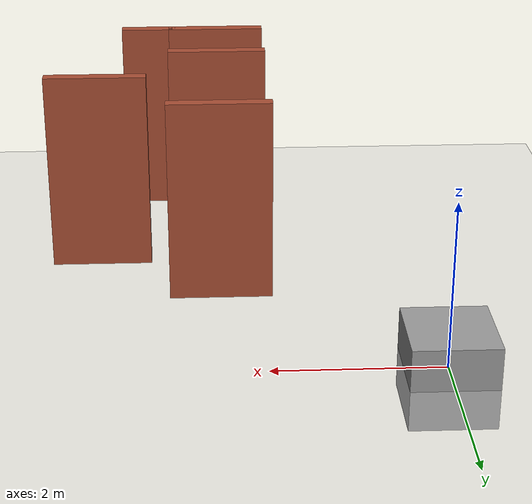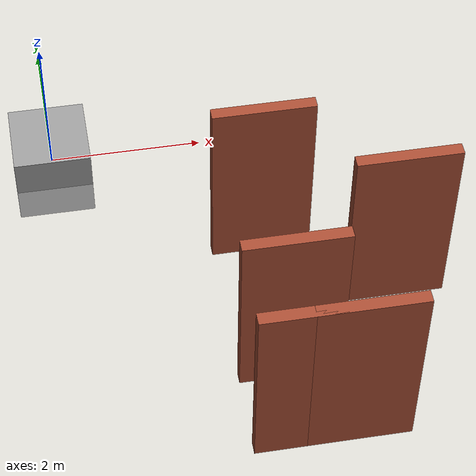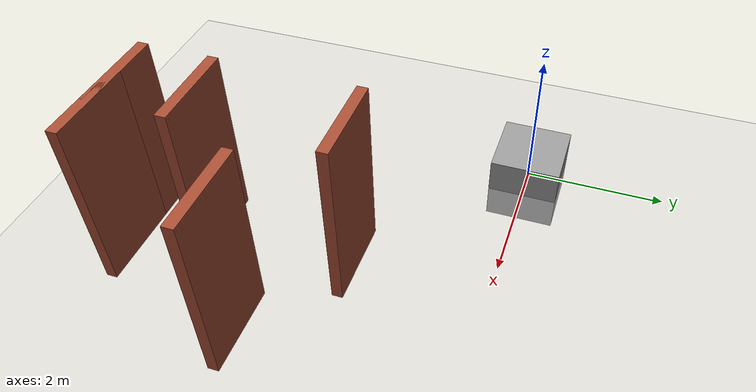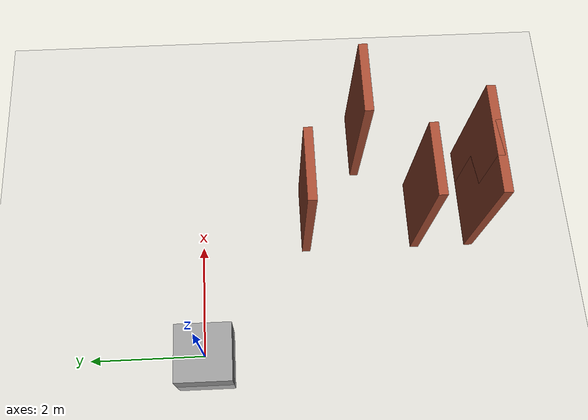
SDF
<sdf version="1.6">
 <world name="default">
  <light name="sun" type="directional">
   <pose>0 0 10 0 -0 0</pose>
   <diffuse>0.8 0.8 0.8 1</diffuse>
   <specular>0.2 0.2 0.2 1</specular>
   <attenuation>
    <range>1000</range>
    <constant>0.9</constant>
    <linear>0.01</linear>
    <quadratic>0.001</quadratic>
   </attenuation>
   <direction>-0.5 0.1 -0.9</direction>
  </light>
  <model name="ground_plane">
   <static>1</static>
   <link name="link">
    <collision name="collision">
     <geometry><plane><normal>0 0 1</normal><size>100 100</size></plane></geometry>
     <surface><friction><ode><mu>100</mu><mu2>50</mu2></ode></friction></surface>
    </collision>
    <visual name="visual">
     <cast_shadows>0</cast_shadows>
     <geometry><plane><normal>0 0 1</normal><size>100 100</size></plane></geometry>
     <material>
      <script><uri>file://media/materials/scripts/gazebo.material</uri><name>Gazebo/Grey</name></script>
     </material>
    </visual>
   </link>
  </model>
  <gravity>0 0 -9.8</gravity>
  <magnetic_field>6e-06 2.3e-05 -4.2e-05</magnetic_field>
  <atmosphere type="adiabatic"/>
  <physics name="default_physics" default="0" type="ode">
   <max_step_size>0.001</max_step_size>
   <real_time_factor>1</real_time_factor>
   <real_time_update_rate>1000</real_time_update_rate>
  </physics>
  <scene><ambient>0.4 0.4 0.4 1</ambient><background>0.7 0.7 0.7 1</background><shadows>1</shadows></scene>
  <audio><device>default</device></audio>
  <spherical_coordinates>
   <surface_model>EARTH_WGS84</surface_model>
   <latitude_deg>0</latitude_deg>
   <longitude_deg>0</longitude_deg>
   <elevation>0</elevation>
   <heading_deg>0</heading_deg>
  </spherical_coordinates>
  <model name="Untitled">
   <pose>3 0.5 0 0 -0 0</pose>
   <link name="Wall_4">
    <collision name="Wall_4_Collision">
     <geometry><box><size>1.25 0.15 2.5</size></box></geometry>
     <pose>-1.5 2 1.25 0 -0 0</pose>
    </collision>
    <visual name="Wall_4_Visual">
     <pose>-1.5 2 1.25 0 -0 0</pose>
     <geometry><box><size>1.25 0.15 2.5</size></box></geometry>
     <material>
      <script><uri>file://media/materials/scripts/gazebo.material</uri><name>Gazebo/Bricks</name></script>
      <ambient>1 1 1 1</ambient>
     </material>
     <meta><layer>0</layer></meta>
    </visual>
    <pose>-0.507011 -1.38253 0 0 -0 3.14159</pose>
   </link>
   <link name="Wall_5">
    <collision name="Wall_5_Collision">
     <geometry><box><size>1.25 0.15 2.5</size></box></geometry>
     <pose>-0.625 4 1.25 0 -0 0</pose>
    </collision>
    <visual name="Wall_5_Visual">
     <pose>-0.625 4 1.25 0 -0 0</pose>
     <geometry><box><size>1.25 0.15 2.5</size></box></geometry>
     <material>
      <script><uri>file://media/materials/scripts/gazebo.material</uri><name>Gazebo/Bricks</name></script>
      <ambient>1 1 1 1</ambient>
     </material>
     <meta><layer>0</layer></meta>
    </visual>
    <pose>-0.507011 -1.38253 0 0 -0 3.14159</pose>
   </link>
   <link name="Wall_6">
    <collision name="Wall_6_Collision">
     <geometry><box><size>1.25 0.15 2.5</size></box></geometry>
     <pose>0 4 1.25 0 -0 0</pose>
    </collision>
    <visual name="Wall_6_Visual">
     <pose>0 4 1.25 0 -0 0</pose>
     <geometry><box><size>1.25 0.15 2.5</size></box></geometry>
     <material>
      <script><uri>file://media/materials/scripts/gazebo.material</uri><name>Gazebo/Bricks</name></script>
      <ambient>1 1 1 1</ambient>
     </material>
     <meta><layer>0</layer></meta>
    </visual>
    <pose>-0.507011 -1.38253 0 0 -0 3.14159</pose>
   </link>
   <link name="Wall_7">
    <collision name="Wall_7_Collision">
     <geometry><box><size>1.25 0.15 2.5</size></box></geometry>
     <pose>0 3 1.25 0 -0 0</pose>
    </collision>
    <visual name="Wall_7_Visual">
     <pose>0 3 1.25 0 -0 0</pose>
     <geometry><box><size>1.25 0.15 2.5</size></box></geometry>
     <material>
      <script><uri>file://media/materials/scripts/gazebo.material</uri><name>Gazebo/Bricks</name></script>
      <ambient>1 1 1 1</ambient>
     </material>
     <meta><layer>0</layer></meta>
    </visual>
    <pose>-0.507011 -1.38253 0 0 -0 3.14159</pose>
   </link>
   <link name="Wall_8">
    <collision name="Wall_8_Collision">
     <geometry><box><size>1.25 0.15 2.5</size></box></geometry>
     <pose>0 1 1.25 0 -0 0</pose>
    </collision>
    <visual name="Wall_8_Visual">
     <pose>0 1 1.25 0 -0 0</pose>
     <geometry><box><size>1.25 0.15 2.5</size></box></geometry>
     <material>
      <script><uri>file://media/materials/scripts/gazebo.material</uri><name>Gazebo/Bricks</name></script>
      <ambient>1 1 1 1</ambient>
     </material>
     <meta><layer>0</layer></meta>
    </visual>
    <pose>-0.507011 -1.38253 0 0 -0 3.14159</pose>
   </link>
   <static>1</static>
  </model>
  <model name="unit_box">
   <link name="link">
    <inertial>
     <mass>1</mass>
     <inertia>
      <ixx>0.166667</ixx>
      <ixy>0</ixy>
      <ixz>0</ixz>
      <iyy>0.166667</iyy>
      <iyz>0</iyz>
      <izz>0.166667</izz>
     </inertia>
    </inertial>
    <collision name="collision"><geometry><box><size>1 1 1</size></box></geometry></collision>
    <visual name="visual">
     <geometry><box><size>1 1 1</size></box></geometry>
     <material>
      <script><name>Gazebo/Grey</name><uri>file://media/materials/scripts/gazebo.material</uri></script>
     </material>
    </visual>
   </link>
  </model>
  <model name="unit_box2">
   <link name="link">
    <inertial>
     <mass>1</mass>
     <inertia>
      <ixx>0.166667</ixx>
      <ixy>0</ixy>
      <ixz>0</ixz>
      <iyy>0.166667</iyy>
      <iyz>0</iyz>
      <izz>0.166667</izz>
     </inertia>
    </inertial>
    <collision name="collision"><geometry><box><size>1 1 1</size></box></geometry></collision>
    <visual name="visual">
     <geometry><box><size>1 1 1</size></box></geometry>
     <material>
      <script><name>Gazebo/Grey</name><uri>file://media/materials/scripts/gazebo.material</uri></script>
     </material>
    </visual>
   </link>
  </model>
 </world>
</sdf>
